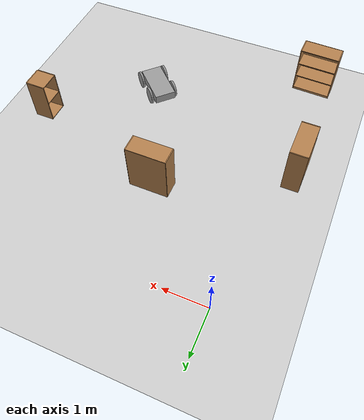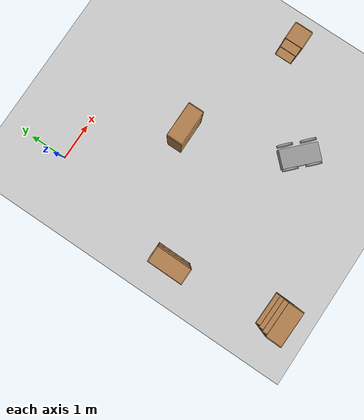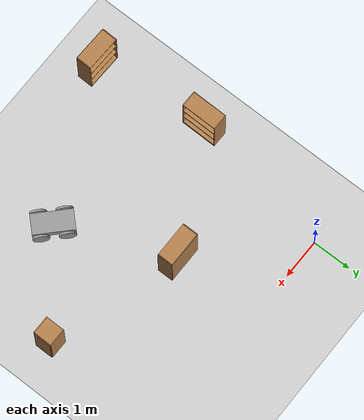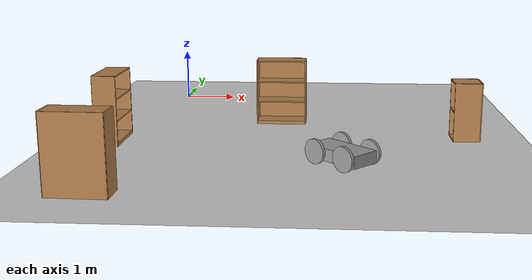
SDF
<sdf version="1.6">
 <world name="default">
  <model name="ground_plane">
   <static>1</static>
   <link name="link">
    <collision name="collision">
     <geometry><plane><normal>0 0 1</normal><size>100 100</size></plane></geometry>
     <surface>
      <contact><collide_bitmask>65535</collide_bitmask></contact>
      <friction><ode><mu>100</mu><mu2>50</mu2></ode></friction>
     </surface>
    </collision>
    <visual name="visual">
     <cast_shadows>0</cast_shadows>
     <geometry><plane><normal>0 0 1</normal><size>100 100</size></plane></geometry>
     <material>
      <script><uri>file://media/materials/scripts/gazebo.material</uri><name>Gazebo/Grey</name></script>
     </material>
    </visual>
   </link>
  </model>
  <model name="FourWheelRobot_0">
   <link name="link_0">
    <pose>-0 -0 -0.015999 0 -0 0</pose>
    <inertial>
     <mass>1</mass>
     <inertia>
      <ixx>0.166667</ixx>
      <ixy>0</ixy>
      <ixz>0</ixz>
      <iyy>0.166667</iyy>
      <iyz>0</iyz>
      <izz>0.166667</izz>
     </inertia>
    </inertial>
    <visual name="visual">
     <geometry><box><size>1 0.5 0.2</size></box></geometry>
     <material>
      <lighting>1</lighting>
      <script><uri>file://media/materials/scripts/gazebo.material</uri><name>Gazebo/Grey</name></script>
      <shader type="pixel"><normal_map>__default__</normal_map></shader>
      <ambient>0.3 0.3 0.3 1</ambient>
      <diffuse>0.7 0.7 0.7 1</diffuse>
      <specular>0.01 0.01 0.01 1</specular>
      <emissive>0 0 0 1</emissive>
     </material>
    </visual>
    <collision name="collision">
     <geometry><box><size>1 0.5 0.2</size></box></geometry>
     <surface>
      <friction>
       <ode><mu>1</mu><mu2>1</mu2><fdir1>0 0 0</fdir1><slip1>0</slip1><slip2>0</slip2></ode>
       <torsional>
        <coefficient>1</coefficient>
        <patch_radius>0</patch_radius>
        <surface_radius>0</surface_radius>
        <use_patch_radius>1</use_patch_radius>
        <ode><slip>0</slip></ode>
       </torsional>
      </friction>
      <bounce><restitution_coefficient>0</restitution_coefficient><threshold>1e+06</threshold></bounce>
      <contact>
       <collide_without_contact>0</collide_without_contact>
       <collide_without_contact_bitmask>1</collide_without_contact_bitmask>
       <collide_bitmask>1</collide_bitmask>
       <ode>
        <soft_cfm>0</soft_cfm>
        <soft_erp>0.2</soft_erp>
        <kp>1e+13</kp>
        <kd>1</kd>
        <max_vel>0.01</max_vel>
        <min_depth>0</min_depth>
       </ode>
       <bullet>
        <split_impulse>1</split_impulse>
        <split_impulse_penetration_threshold>-0.01</split_impulse_penetration_threshold>
        <soft_cfm>0</soft_cfm>
        <soft_erp>0.2</soft_erp>
        <kp>1e+13</kp>
        <kd>1</kd>
       </bullet>
      </contact>
     </surface>
    </collision>
   </link>
   <link name="link_1">
    <pose>-0.299779 -0.277085 0.003993 1.5707 -0 0</pose>
    <inertial>
     <mass>1</mass>
     <inertia><ixx>0.145833</ixx><ixy>0</ixy><ixz>0</ixz><iyy>0.145833</iyy><iyz>0</iyz><izz>0.125</izz></inertia>
    </inertial>
    <visual name="visual">
     <geometry><cylinder><radius>0.2</radius><length>0.05</length></cylinder></geometry>
     <material>
      <lighting>1</lighting>
      <script><uri>file://media/materials/scripts/gazebo.material</uri><name>Gazebo/Grey</name></script>
      <shader type="pixel"><normal_map>__default__</normal_map></shader>
      <ambient>0.3 0.3 0.3 1</ambient>
      <diffuse>0.7 0.7 0.7 1</diffuse>
      <specular>0.01 0.01 0.01 1</specular>
      <emissive>0 0 0 1</emissive>
     </material>
    </visual>
    <collision name="collision">
     <geometry><cylinder><radius>0.2</radius><length>0.05</length></cylinder></geometry>
     <surface>
      <friction>
       <ode><mu>1</mu><mu2>1</mu2><fdir1>0 0 0</fdir1><slip1>0</slip1><slip2>0</slip2></ode>
       <torsional>
        <coefficient>1</coefficient>
        <patch_radius>0</patch_radius>
        <surface_radius>0</surface_radius>
        <use_patch_radius>1</use_patch_radius>
        <ode><slip>0</slip></ode>
       </torsional>
      </friction>
      <bounce><restitution_coefficient>0</restitution_coefficient><threshold>1e+06</threshold></bounce>
      <contact>
       <collide_without_contact>0</collide_without_contact>
       <collide_without_contact_bitmask>1</collide_without_contact_bitmask>
       <collide_bitmask>1</collide_bitmask>
       <ode>
        <soft_cfm>0</soft_cfm>
        <soft_erp>0.2</soft_erp>
        <kp>1e+13</kp>
        <kd>1</kd>
        <max_vel>0.01</max_vel>
        <min_depth>0</min_depth>
       </ode>
       <bullet>
        <split_impulse>1</split_impulse>
        <split_impulse_penetration_threshold>-0.01</split_impulse_penetration_threshold>
        <soft_cfm>0</soft_cfm>
        <soft_erp>0.2</soft_erp>
        <kp>1e+13</kp>
        <kd>1</kd>
       </bullet>
      </contact>
     </surface>
    </collision>
   </link>
   <link name="link_1_clone">
    <pose>0.301033 -0.275844 0.004001 1.5707 -0 0</pose>
    <inertial>
     <mass>1</mass>
     <inertia><ixx>0.145833</ixx><ixy>0</ixy><ixz>0</ixz><iyy>0.145833</iyy><iyz>0</iyz><izz>0.125</izz></inertia>
    </inertial>
    <visual name="visual">
     <geometry><cylinder><radius>0.2</radius><length>0.05</length></cylinder></geometry>
     <material>
      <lighting>1</lighting>
      <script><uri>file://media/materials/scripts/gazebo.material</uri><name>Gazebo/Grey</name></script>
      <shader type="pixel"><normal_map>__default__</normal_map></shader>
      <ambient>0.3 0.3 0.3 1</ambient>
      <diffuse>0.7 0.7 0.7 1</diffuse>
      <specular>0.01 0.01 0.01 1</specular>
      <emissive>0 0 0 1</emissive>
     </material>
    </visual>
    <collision name="collision">
     <geometry><cylinder><radius>0.2</radius><length>0.05</length></cylinder></geometry>
     <surface>
      <friction>
       <ode><mu>1</mu><mu2>1</mu2><fdir1>0 0 0</fdir1><slip1>0</slip1><slip2>0</slip2></ode>
       <torsional>
        <coefficient>1</coefficient>
        <patch_radius>0</patch_radius>
        <surface_radius>0</surface_radius>
        <use_patch_radius>1</use_patch_radius>
        <ode><slip>0</slip></ode>
       </torsional>
      </friction>
      <bounce><restitution_coefficient>0</restitution_coefficient><threshold>1e+06</threshold></bounce>
      <contact>
       <collide_without_contact>0</collide_without_contact>
       <collide_without_contact_bitmask>1</collide_without_contact_bitmask>
       <collide_bitmask>1</collide_bitmask>
       <ode>
        <soft_cfm>0</soft_cfm>
        <soft_erp>0.2</soft_erp>
        <kp>1e+13</kp>
        <kd>1</kd>
        <max_vel>0.01</max_vel>
        <min_depth>0</min_depth>
       </ode>
       <bullet>
        <split_impulse>1</split_impulse>
        <split_impulse_penetration_threshold>-0.01</split_impulse_penetration_threshold>
        <soft_cfm>0</soft_cfm>
        <soft_erp>0.2</soft_erp>
        <kp>1e+13</kp>
        <kd>1</kd>
       </bullet>
      </contact>
     </surface>
    </collision>
   </link>
   <link name="link_1_clone_0">
    <pose>-0.301033 0.330349 0.003996 1.5707 -0 0</pose>
    <inertial>
     <mass>1</mass>
     <inertia><ixx>0.145833</ixx><ixy>0</ixy><ixz>0</ixz><iyy>0.145833</iyy><iyz>0</iyz><izz>0.125</izz></inertia>
    </inertial>
    <visual name="visual">
     <geometry><cylinder><radius>0.2</radius><length>0.05</length></cylinder></geometry>
     <material>
      <lighting>1</lighting>
      <script><uri>file://media/materials/scripts/gazebo.material</uri><name>Gazebo/Grey</name></script>
      <shader type="pixel"><normal_map>__default__</normal_map></shader>
      <ambient>0.3 0.3 0.3 1</ambient>
      <diffuse>0.7 0.7 0.7 1</diffuse>
      <specular>0.01 0.01 0.01 1</specular>
      <emissive>0 0 0 1</emissive>
     </material>
    </visual>
    <collision name="collision">
     <geometry><cylinder><radius>0.2</radius><length>0.05</length></cylinder></geometry>
     <surface>
      <friction>
       <ode><mu>1</mu><mu2>1</mu2><fdir1>0 0 0</fdir1><slip1>0</slip1><slip2>0</slip2></ode>
       <torsional>
        <coefficient>1</coefficient>
        <patch_radius>0</patch_radius>
        <surface_radius>0</surface_radius>
        <use_patch_radius>1</use_patch_radius>
        <ode><slip>0</slip></ode>
       </torsional>
      </friction>
      <bounce><restitution_coefficient>0</restitution_coefficient><threshold>1e+06</threshold></bounce>
      <contact>
       <collide_without_contact>0</collide_without_contact>
       <collide_without_contact_bitmask>1</collide_without_contact_bitmask>
       <collide_bitmask>1</collide_bitmask>
       <ode>
        <soft_cfm>0</soft_cfm>
        <soft_erp>0.2</soft_erp>
        <kp>1e+13</kp>
        <kd>1</kd>
        <max_vel>0.01</max_vel>
        <min_depth>0</min_depth>
       </ode>
       <bullet>
        <split_impulse>1</split_impulse>
        <split_impulse_penetration_threshold>-0.01</split_impulse_penetration_threshold>
        <soft_cfm>0</soft_cfm>
        <soft_erp>0.2</soft_erp>
        <kp>1e+13</kp>
        <kd>1</kd>
       </bullet>
      </contact>
     </surface>
    </collision>
   </link>
   <link name="link_1_clone_1">
    <pose>0.299779 0.331589 0.004003 1.5707 -0 0</pose>
    <inertial>
     <mass>1</mass>
     <inertia><ixx>0.145833</ixx><ixy>0</ixy><ixz>0</ixz><iyy>0.145833</iyy><iyz>0</iyz><izz>0.125</izz></inertia>
    </inertial>
    <visual name="visual">
     <geometry><cylinder><radius>0.2</radius><length>0.05</length></cylinder></geometry>
     <material>
      <lighting>1</lighting>
      <script><uri>file://media/materials/scripts/gazebo.material</uri><name>Gazebo/Grey</name></script>
      <shader type="pixel"><normal_map>__default__</normal_map></shader>
      <ambient>0.3 0.3 0.3 1</ambient>
      <diffuse>0.7 0.7 0.7 1</diffuse>
      <specular>0.01 0.01 0.01 1</specular>
      <emissive>0 0 0 1</emissive>
     </material>
    </visual>
    <collision name="collision">
     <geometry><cylinder><radius>0.2</radius><length>0.05</length></cylinder></geometry>
     <surface>
      <friction>
       <ode><mu>1</mu><mu2>1</mu2><fdir1>0 0 0</fdir1><slip1>0</slip1><slip2>0</slip2></ode>
       <torsional>
        <coefficient>1</coefficient>
        <patch_radius>0</patch_radius>
        <surface_radius>0</surface_radius>
        <use_patch_radius>1</use_patch_radius>
        <ode><slip>0</slip></ode>
       </torsional>
      </friction>
      <bounce><restitution_coefficient>0</restitution_coefficient><threshold>1e+06</threshold></bounce>
      <contact>
       <collide_without_contact>0</collide_without_contact>
       <collide_without_contact_bitmask>1</collide_without_contact_bitmask>
       <collide_bitmask>1</collide_bitmask>
       <ode>
        <soft_cfm>0</soft_cfm>
        <soft_erp>0.2</soft_erp>
        <kp>1e+13</kp>
        <kd>1</kd>
        <max_vel>0.01</max_vel>
        <min_depth>0</min_depth>
       </ode>
       <bullet>
        <split_impulse>1</split_impulse>
        <split_impulse_penetration_threshold>-0.01</split_impulse_penetration_threshold>
        <soft_cfm>0</soft_cfm>
        <soft_erp>0.2</soft_erp>
        <kp>1e+13</kp>
        <kd>1</kd>
       </bullet>
      </contact>
     </surface>
    </collision>
   </link>
   <joint name="link_0_JOINT_0" type="revolute">
    <parent>link_0</parent>
    <child>link_1</child>
    <axis>
     <xyz>0 0 1</xyz>
     <use_parent_model_frame>0</use_parent_model_frame>
     <limit>
      <lower>-1.79769e+308</lower>
      <upper>1.79769e+308</upper>
      <effort>-1</effort>
      <velocity>-1</velocity>
     </limit>
     <dynamics>
      <spring_reference>0</spring_reference>
      <spring_stiffness>0</spring_stiffness>
      <damping>0</damping>
     </dynamics>
    </axis>
    <physics>
     <ode><limit><cfm>0</cfm><erp>0.2</erp></limit><suspension><cfm>0</cfm><erp>0.2</erp></suspension></ode>
    </physics>
   </joint>
   <joint name="link_0_JOINT_1" type="revolute">
    <parent>link_0</parent>
    <child>link_1_clone</child>
    <axis>
     <xyz>0 0 1</xyz>
     <use_parent_model_frame>0</use_parent_model_frame>
     <limit>
      <lower>-1.79769e+308</lower>
      <upper>1.79769e+308</upper>
      <effort>-1</effort>
      <velocity>-1</velocity>
     </limit>
     <dynamics>
      <spring_reference>0</spring_reference>
      <spring_stiffness>0</spring_stiffness>
      <damping>0</damping>
     </dynamics>
    </axis>
    <physics>
     <ode><limit><cfm>0</cfm><erp>0.2</erp></limit><suspension><cfm>0</cfm><erp>0.2</erp></suspension></ode>
    </physics>
   </joint>
   <joint name="link_0_JOINT_2" type="revolute">
    <parent>link_0</parent>
    <child>link_1_clone_0</child>
    <axis>
     <xyz>0 0 1</xyz>
     <use_parent_model_frame>0</use_parent_model_frame>
     <limit>
      <lower>-1.79769e+308</lower>
      <upper>1.79769e+308</upper>
      <effort>-1</effort>
      <velocity>-1</velocity>
     </limit>
     <dynamics>
      <spring_reference>0</spring_reference>
      <spring_stiffness>0</spring_stiffness>
      <damping>0</damping>
     </dynamics>
    </axis>
    <physics>
     <ode><limit><cfm>0</cfm><erp>0.2</erp></limit><suspension><cfm>0</cfm><erp>0.2</erp></suspension></ode>
    </physics>
   </joint>
   <joint name="link_0_JOINT_3" type="revolute">
    <parent>link_0</parent>
    <child>link_1_clone_1</child>
    <axis>
     <xyz>0 0 1</xyz>
     <use_parent_model_frame>0</use_parent_model_frame>
     <limit>
      <lower>-1.79769e+308</lower>
      <upper>1.79769e+308</upper>
      <effort>-1</effort>
      <velocity>-1</velocity>
     </limit>
     <dynamics>
      <spring_reference>0</spring_reference>
      <spring_stiffness>0</spring_stiffness>
      <damping>0</damping>
     </dynamics>
    </axis>
    <physics>
     <ode><limit><cfm>0</cfm><erp>0.2</erp></limit><suspension><cfm>0</cfm><erp>0.2</erp></suspension></ode>
    </physics>
   </joint>
   <static>0</static>
   <pose>3.31836 -4.86666 0.196004 -5e-06 1.3e-05 -0.770353</pose>
  </model>
  <model name="bookshelf">
   <static>1</static>
   <link name="link">
    <inertial><mass>1</mass></inertial>
    <collision name="back">
     <pose>0 0.005 0.6 0 -0 0</pose>
     <geometry><box><size>0.9 0.01 1.2</size></box></geometry>
    </collision>
    <visual name="visual1">
     <pose>0 0.005 0.6 0 -0 0</pose>
     <geometry><box><size>0.9 0.01 1.2</size></box></geometry>
     <material>
      <script><uri>file://media/materials/scripts/gazebo.material</uri><name>Gazebo/Wood</name></script>
     </material>
    </visual>
    <collision name="left_side">
     <pose>0.45 -0.195 0.6 0 -0 0</pose>
     <geometry><box><size>0.02 0.4 1.2</size></box></geometry>
    </collision>
    <visual name="visual2">
     <pose>0.45 -0.195 0.6 0 -0 0</pose>
     <geometry><box><size>0.02 0.4 1.2</size></box></geometry>
     <material>
      <script><uri>file://media/materials/scripts/gazebo.material</uri><name>Gazebo/Wood</name></script>
     </material>
    </visual>
    <collision name="right_side">
     <pose>-0.45 -0.195 0.6 0 -0 0</pose>
     <geometry><box><size>0.02 0.4 1.2</size></box></geometry>
    </collision>
    <visual name="visual3">
     <pose>-0.45 -0.195 0.6 0 -0 0</pose>
     <geometry><box><size>0.02 0.4 1.2</size></box></geometry>
     <material>
      <script><uri>file://media/materials/scripts/gazebo.material</uri><name>Gazebo/Wood</name></script>
     </material>
    </visual>
    <collision name="bottom">
     <pose>0 -0.195 0.03 0 -0 0</pose>
     <geometry><box><size>0.88 0.4 0.06</size></box></geometry>
    </collision>
    <visual name="visual4">
     <pose>0 -0.195 0.03 0 -0 0</pose>
     <geometry><box><size>0.88 0.4 0.06</size></box></geometry>
     <material>
      <script><uri>file://media/materials/scripts/gazebo.material</uri><name>Gazebo/Wood</name></script>
     </material>
    </visual>
    <collision name="top">
     <pose>0 -0.195 1.19 0 -0 0</pose>
     <geometry><box><size>0.88 0.4 0.02</size></box></geometry>
    </collision>
    <visual name="visual5">
     <pose>0 -0.195 1.19 0 -0 0</pose>
     <geometry><box><size>0.88 0.4 0.02</size></box></geometry>
     <material>
      <script><uri>file://media/materials/scripts/gazebo.material</uri><name>Gazebo/Wood</name></script>
     </material>
    </visual>
    <collision name="low_shelf">
     <pose>0 -0.195 0.43 0 -0 0</pose>
     <geometry><box><size>0.88 0.4 0.02</size></box></geometry>
    </collision>
    <visual name="visual6">
     <pose>0 -0.195 0.43 0 -0 0</pose>
     <geometry><box><size>0.88 0.4 0.02</size></box></geometry>
     <material>
      <script><uri>file://media/materials/scripts/gazebo.material</uri><name>Gazebo/Wood</name></script>
     </material>
    </visual>
    <collision name="high_shelf">
     <pose>0 -0.195 0.8 0 -0 0</pose>
     <geometry><box><size>0.88 0.4 0.02</size></box></geometry>
    </collision>
    <visual name="visual7">
     <pose>0 -0.195 0.8 0 -0 0</pose>
     <geometry><box><size>0.88 0.4 0.02</size></box></geometry>
     <material>
      <script><uri>file://media/materials/scripts/gazebo.material</uri><name>Gazebo/Wood</name></script>
     </material>
    </visual>
   </link>
   <pose>2.21491 -1.96601 0 0 -0 0</pose>
  </model>
  <model name="bookshelf_clone_2">
   <static>1</static>
   <link name="link">
    <inertial><mass>1</mass></inertial>
    <collision name="back">
     <pose>0 0.005 0.6 0 -0 0</pose>
     <geometry><box><size>0.9 0.01 1.2</size></box></geometry>
    </collision>
    <visual name="visual1">
     <pose>0 0.005 0.6 0 -0 0</pose>
     <geometry><box><size>0.9 0.01 1.2</size></box></geometry>
     <material>
      <script><uri>file://media/materials/scripts/gazebo.material</uri><name>Gazebo/Wood</name></script>
     </material>
    </visual>
    <collision name="left_side">
     <pose>0.45 -0.195 0.6 0 -0 0</pose>
     <geometry><box><size>0.02 0.4 1.2</size></box></geometry>
    </collision>
    <visual name="visual2">
     <pose>0.45 -0.195 0.6 0 -0 0</pose>
     <geometry><box><size>0.02 0.4 1.2</size></box></geometry>
     <material>
      <script><uri>file://media/materials/scripts/gazebo.material</uri><name>Gazebo/Wood</name></script>
     </material>
    </visual>
    <collision name="right_side">
     <pose>-0.45 -0.195 0.6 0 -0 0</pose>
     <geometry><box><size>0.02 0.4 1.2</size></box></geometry>
    </collision>
    <visual name="visual3">
     <pose>-0.45 -0.195 0.6 0 -0 0</pose>
     <geometry><box><size>0.02 0.4 1.2</size></box></geometry>
     <material>
      <script><uri>file://media/materials/scripts/gazebo.material</uri><name>Gazebo/Wood</name></script>
     </material>
    </visual>
    <collision name="bottom">
     <pose>0 -0.195 0.03 0 -0 0</pose>
     <geometry><box><size>0.88 0.4 0.06</size></box></geometry>
    </collision>
    <visual name="visual4">
     <pose>0 -0.195 0.03 0 -0 0</pose>
     <geometry><box><size>0.88 0.4 0.06</size></box></geometry>
     <material>
      <script><uri>file://media/materials/scripts/gazebo.material</uri><name>Gazebo/Wood</name></script>
     </material>
    </visual>
    <collision name="top">
     <pose>0 -0.195 1.19 0 -0 0</pose>
     <geometry><box><size>0.88 0.4 0.02</size></box></geometry>
    </collision>
    <visual name="visual5">
     <pose>0 -0.195 1.19 0 -0 0</pose>
     <geometry><box><size>0.88 0.4 0.02</size></box></geometry>
     <material>
      <script><uri>file://media/materials/scripts/gazebo.material</uri><name>Gazebo/Wood</name></script>
     </material>
    </visual>
    <collision name="low_shelf">
     <pose>0 -0.195 0.43 0 -0 0</pose>
     <geometry><box><size>0.88 0.4 0.02</size></box></geometry>
    </collision>
    <visual name="visual6">
     <pose>0 -0.195 0.43 0 -0 0</pose>
     <geometry><box><size>0.88 0.4 0.02</size></box></geometry>
     <material>
      <script><uri>file://media/materials/scripts/gazebo.material</uri><name>Gazebo/Wood</name></script>
     </material>
    </visual>
    <collision name="high_shelf">
     <pose>0 -0.195 0.8 0 -0 0</pose>
     <geometry><box><size>0.88 0.4 0.02</size></box></geometry>
    </collision>
    <visual name="visual7">
     <pose>0 -0.195 0.8 0 -0 0</pose>
     <geometry><box><size>0.88 0.4 0.02</size></box></geometry>
     <material>
      <script><uri>file://media/materials/scripts/gazebo.material</uri><name>Gazebo/Wood</name></script>
     </material>
    </visual>
   </link>
   <pose>-0.270223 -6.64532 0 0 -0 3.11328</pose>
  </model>
  <model name="cabinet">
   <static>1</static>
   <link name="cabinet_bottom_plate">
    <inertial>
     <pose>0 0 -1 0 -0 0</pose>
     <inertia><ixx>2.05</ixx><ixy>0</ixy><ixz>0</ixz><iyy>2.05</iyy><iyz>0</iyz><izz>2.05</izz></inertia>
     <mass>25</mass>
    </inertial>
    <collision name="cabinet_bottom_plate_geom">
     <pose>0 0 0.01 0 -0 0</pose>
     <geometry><box><size>0.45 0.45 0.02</size></box></geometry>
    </collision>
    <visual name="cabinet_bottom_plate_geom_visual">
     <pose>0 0 0.01 0 -0 0</pose>
     <geometry><box><size>0.45 0.45 0.02</size></box></geometry>
     <material>
      <script><uri>file://media/materials/scripts/gazebo.material</uri><name>Gazebo/Wood</name></script>
     </material>
    </visual>
    <collision name="cabinet_bottom_plate_geom_cabinet_back_plate">
     <pose>0.235 0 0.51 0 -0 0</pose>
     <geometry><box><size>0.02 0.45 1.02</size></box></geometry>
    </collision>
    <visual name="cabinet_bottom_plate_geom_cabinet_back_plate_visual">
     <pose>0.235 0 0.51 0 -0 0</pose>
     <geometry><box><size>0.02 0.45 1.02</size></box></geometry>
     <material>
      <script><uri>file://media/materials/scripts/gazebo.material</uri><name>Gazebo/Wood</name></script>
     </material>
    </visual>
    <collision name="cabinet_bottom_plate_geom_cabinet_left_plate">
     <pose>0 0.235 0.51 0 -0 0</pose>
     <geometry><box><size>0.45 0.02 1.02</size></box></geometry>
    </collision>
    <visual name="cabinet_bottom_plate_geom_cabinet_left_plate_visual">
     <pose>0 0.235 0.51 0 -0 0</pose>
     <geometry><box><size>0.45 0.02 1.02</size></box></geometry>
     <material>
      <script><uri>file://media/materials/scripts/gazebo.material</uri><name>Gazebo/Wood</name></script>
     </material>
    </visual>
    <collision name="cabinet_bottom_plate_geom_cabinet_middle_plate">
     <pose>0 0 0.51 0 -0 0</pose>
     <geometry><box><size>0.45 0.45 0.02</size></box></geometry>
    </collision>
    <visual name="cabinet_bottom_plate_geom_cabinet_middle_plate_visual">
     <pose>0 0 0.51 0 -0 0</pose>
     <geometry><box><size>0.45 0.45 0.02</size></box></geometry>
     <material>
      <script><uri>file://media/materials/scripts/gazebo.material</uri><name>Gazebo/Wood</name></script>
     </material>
    </visual>
    <collision name="cabinet_bottom_plate_geom_cabinet_right_plate">
     <pose>0 -0.235 0.51 0 -0 0</pose>
     <geometry><box><size>0.45 0.02 1.02</size></box></geometry>
    </collision>
    <visual name="cabinet_bottom_plate_geom_cabinet_right_plate_visual">
     <pose>0 -0.235 0.51 0 -0 0</pose>
     <geometry><box><size>0.45 0.02 1.02</size></box></geometry>
     <material>
      <script><uri>file://media/materials/scripts/gazebo.material</uri><name>Gazebo/Wood</name></script>
     </material>
    </visual>
    <collision name="cabinet_bottom_plate_geom_cabinet_top_plate">
     <pose>0 0 1.01 0 -0 0</pose>
     <geometry><box><size>0.45 0.45 0.02</size></box></geometry>
    </collision>
    <visual name="cabinet_bottom_plate_geom_cabinet_top_plate_visual">
     <pose>0 0 1.01 0 -0 0</pose>
     <geometry><box><size>0.45 0.45 0.02</size></box></geometry>
     <material>
      <script><uri>file://media/materials/scripts/gazebo.material</uri><name>Gazebo/Wood</name></script>
     </material>
    </visual>
   </link>
   <pose>5.47968 -3.18633 -0.005029 0 -0 0</pose>
  </model>
  <model name="bookshelf_clone_3">
   <static>1</static>
   <link name="link">
    <inertial><mass>1</mass></inertial>
    <collision name="back">
     <pose>0 0.005 0.6 0 -0 0</pose>
     <geometry><box><size>0.9 0.01 1.2</size></box></geometry>
    </collision>
    <visual name="visual1">
     <pose>0 0.005 0.6 0 -0 0</pose>
     <geometry><box><size>0.9 0.01 1.2</size></box></geometry>
     <material>
      <script><uri>file://media/materials/scripts/gazebo.material</uri><name>Gazebo/Wood</name></script>
     </material>
    </visual>
    <collision name="left_side">
     <pose>0.45 -0.195 0.6 0 -0 0</pose>
     <geometry><box><size>0.02 0.4 1.2</size></box></geometry>
    </collision>
    <visual name="visual2">
     <pose>0.45 -0.195 0.6 0 -0 0</pose>
     <geometry><box><size>0.02 0.4 1.2</size></box></geometry>
     <material>
      <script><uri>file://media/materials/scripts/gazebo.material</uri><name>Gazebo/Wood</name></script>
     </material>
    </visual>
    <collision name="right_side">
     <pose>-0.45 -0.195 0.6 0 -0 0</pose>
     <geometry><box><size>0.02 0.4 1.2</size></box></geometry>
    </collision>
    <visual name="visual3">
     <pose>-0.45 -0.195 0.6 0 -0 0</pose>
     <geometry><box><size>0.02 0.4 1.2</size></box></geometry>
     <material>
      <script><uri>file://media/materials/scripts/gazebo.material</uri><name>Gazebo/Wood</name></script>
     </material>
    </visual>
    <collision name="bottom">
     <pose>0 -0.195 0.03 0 -0 0</pose>
     <geometry><box><size>0.88 0.4 0.06</size></box></geometry>
    </collision>
    <visual name="visual4">
     <pose>0 -0.195 0.03 0 -0 0</pose>
     <geometry><box><size>0.88 0.4 0.06</size></box></geometry>
     <material>
      <script><uri>file://media/materials/scripts/gazebo.material</uri><name>Gazebo/Wood</name></script>
     </material>
    </visual>
    <collision name="top">
     <pose>0 -0.195 1.19 0 -0 0</pose>
     <geometry><box><size>0.88 0.4 0.02</size></box></geometry>
    </collision>
    <visual name="visual5">
     <pose>0 -0.195 1.19 0 -0 0</pose>
     <geometry><box><size>0.88 0.4 0.02</size></box></geometry>
     <material>
      <script><uri>file://media/materials/scripts/gazebo.material</uri><name>Gazebo/Wood</name></script>
     </material>
    </visual>
    <collision name="low_shelf">
     <pose>0 -0.195 0.43 0 -0 0</pose>
     <geometry><box><size>0.88 0.4 0.02</size></box></geometry>
    </collision>
    <visual name="visual6">
     <pose>0 -0.195 0.43 0 -0 0</pose>
     <geometry><box><size>0.88 0.4 0.02</size></box></geometry>
     <material>
      <script><uri>file://media/materials/scripts/gazebo.material</uri><name>Gazebo/Wood</name></script>
     </material>
    </visual>
    <collision name="high_shelf">
     <pose>0 -0.195 0.8 0 -0 0</pose>
     <geometry><box><size>0.88 0.4 0.02</size></box></geometry>
    </collision>
    <visual name="visual7">
     <pose>0 -0.195 0.8 0 -0 0</pose>
     <geometry><box><size>0.88 0.4 0.02</size></box></geometry>
     <material>
      <script><uri>file://media/materials/scripts/gazebo.material</uri><name>Gazebo/Wood</name></script>
     </material>
    </visual>
   </link>
   <pose>-0.806751 -3.63627 0 0 -0 1.56323</pose>
  </model>
 </world>
</sdf>
